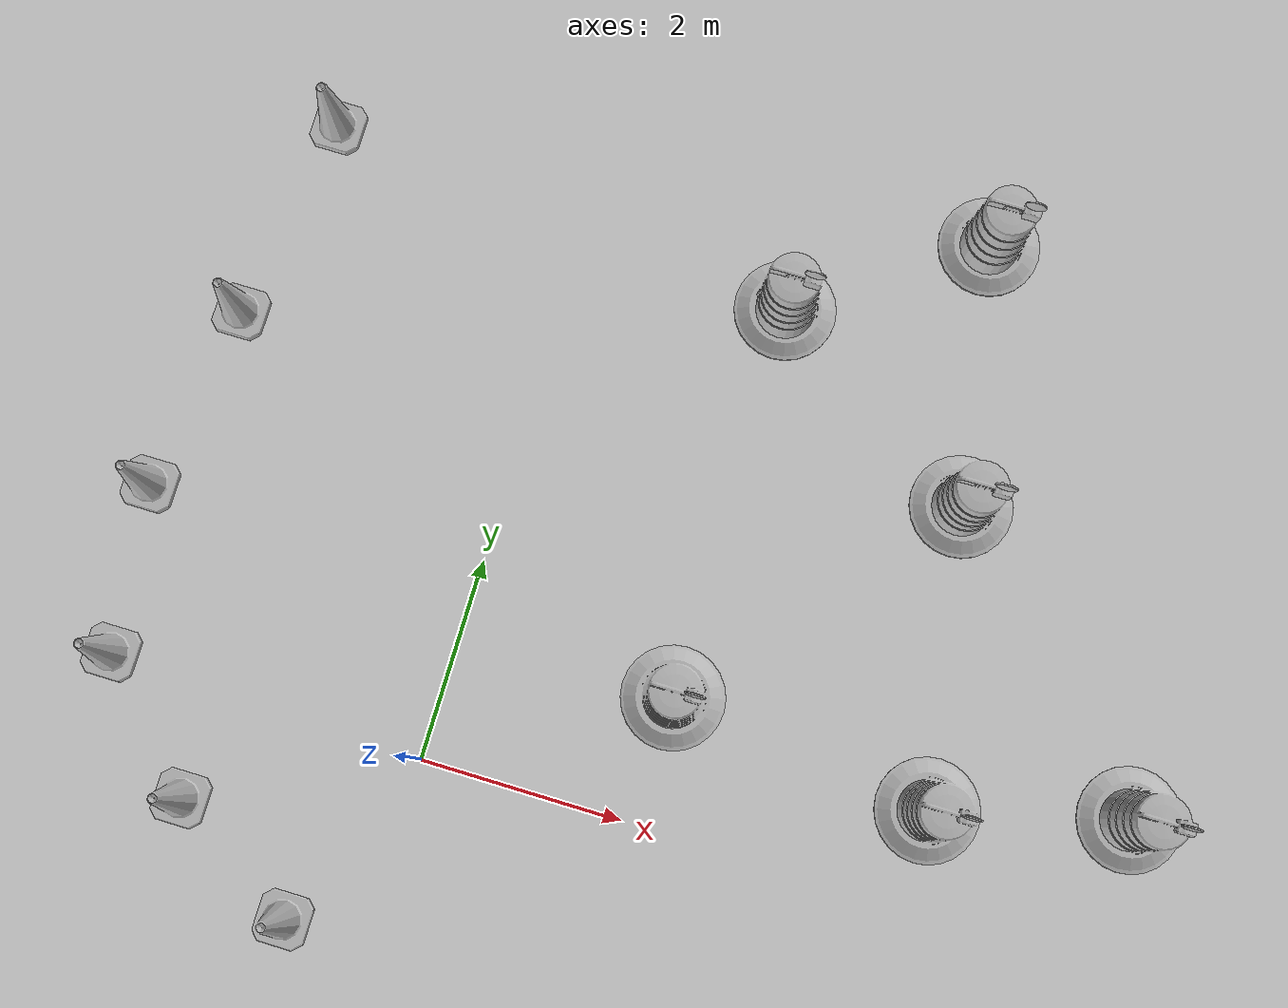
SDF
<sdf version="1.7">
 <world name="default">
  <light name="sun" type="directional">
   <pose>0 0 10 0 -0 0</pose>
   <diffuse>0.8 0.8 0.8 1</diffuse>
   <specular>0.2 0.2 0.2 1</specular>
   <attenuation>
    <range>1000</range>
    <constant>0.9</constant>
    <linear>0.01</linear>
    <quadratic>0.001</quadratic>
   </attenuation>
   <direction>-0.5 0.1 -0.9</direction>
   <spot><inner_angle>0</inner_angle><outer_angle>0</outer_angle><falloff>0</falloff></spot>
  </light>
  <model name="ground_plane">
   <static>1</static>
   <link name="link">
    <collision name="collision">
     <geometry><plane><normal>0 0 1</normal><size>100 100</size></plane></geometry>
     <surface>
      <contact><collide_bitmask>65535</collide_bitmask></contact>
      <friction><ode><mu>100</mu><mu2>50</mu2></ode></friction>
     </surface>
    </collision>
    <visual name="visual">
     <cast_shadows>0</cast_shadows>
     <geometry><plane><normal>0 0 1</normal><size>100 100</size></plane></geometry>
     <material>
      <script><uri>file://media/materials/scripts/gazebo.material</uri><name>Gazebo/Grey</name></script>
     </material>
    </visual>
   </link>
  </model>
  <gravity>0 0 -9.8</gravity>
  <magnetic_field>6e-06 2.3e-05 -4.2e-05</magnetic_field>
  <atmosphere type="adiabatic"/>
  <physics type="ode">
   <max_step_size>0.001</max_step_size>
   <real_time_factor>1</real_time_factor>
   <real_time_update_rate>1000</real_time_update_rate>
  </physics>
  <scene><ambient>0.4 0.4 0.4 1</ambient><background>0.7 0.7 0.7 1</background><shadows>1</shadows></scene>
  <audio><device>default</device></audio>
  <spherical_coordinates>
   <surface_model>EARTH_WGS84</surface_model>
   <latitude_deg>0</latitude_deg>
   <longitude_deg>0</longitude_deg>
   <elevation>0</elevation>
   <heading_deg>0</heading_deg>
  </spherical_coordinates>
  <model name="Construction Barrel">
   <link name="link">
    <inertial>
     <pose>0 0 0.4 0 -0 0</pose>
     <mass>500</mass>
     <inertia><ixx>51.2096</ixx><iyy>51.2096</iyy><izz>25</izz><ixy>0</ixy><ixz>0</ixz><iyz>0</iyz></inertia>
    </inertial>
    <collision name="collision">
     <geometry><mesh><uri>model://construction_barrel/meshes/construction_barrel.dae</uri></mesh></geometry>
    </collision>
    <visual name="visual">
     <geometry><mesh><uri>model://construction_barrel/meshes/construction_barrel.dae</uri></mesh></geometry>
    </visual>
   </link>
   <pose>2.13902 1.26173 -1e-06 2e-06 -1e-06 -2.6e-05</pose>
  </model>
  <model name="Construction Barrel_0">
   <link name="link">
    <inertial>
     <pose>0 0 0.4 0 -0 0</pose>
     <mass>500</mass>
     <inertia><ixx>51.2096</ixx><iyy>51.2096</iyy><izz>25</izz><ixy>0</ixy><ixz>0</ixz><iyz>0</iyz></inertia>
    </inertial>
    <collision name="collision">
     <geometry><mesh><uri>model://construction_barrel/meshes/construction_barrel.dae</uri></mesh></geometry>
    </collision>
    <visual name="visual">
     <geometry><mesh><uri>model://construction_barrel/meshes/construction_barrel.dae</uri></mesh></geometry>
    </visual>
   </link>
   <pose>4.3034 3.85717 -1e-06 2e-06 -1e-06 -1.8e-05</pose>
  </model>
  <model name="Construction Cone">
   <link name="link">
    <collision name="collision">
     <geometry>
      <mesh><scale>10 10 10</scale><uri>model://construction_cone/meshes/construction_cone.dae</uri></mesh>
     </geometry>
    </collision>
    <visual name="visual">
     <geometry>
      <mesh><scale>10 10 10</scale><uri>model://construction_cone/meshes/construction_cone.dae</uri></mesh>
     </geometry>
    </visual>
    <inertial>
     <inertia><ixx>1</ixx><ixy>0</ixy><ixz>0</ixz><iyy>1</iyy><iyz>0</iyz><izz>1</izz></inertia>
     <mass>1</mass>
    </inertial>
   </link>
   <pose>-3.05199 3.67938 0 -0 -0 -0</pose>
  </model>
  <model name="Construction Cone_0">
   <link name="link">
    <collision name="collision">
     <geometry>
      <mesh><scale>10 10 10</scale><uri>model://construction_cone/meshes/construction_cone.dae</uri></mesh>
     </geometry>
    </collision>
    <visual name="visual">
     <geometry>
      <mesh><scale>10 10 10</scale><uri>model://construction_cone/meshes/construction_cone.dae</uri></mesh>
     </geometry>
    </visual>
    <inertial>
     <inertia><ixx>1</ixx><ixy>0</ixy><ixz>0</ixz><iyy>1</iyy><iyz>0</iyz><izz>1</izz></inertia>
     <mass>1</mass>
    </inertial>
   </link>
   <pose>-3.16901 0.116146 -1e-06 2e-06 2e-06 0</pose>
  </model>
  <model name="Construction Barrel_1">
   <link name="link">
    <inertial>
     <pose>0 0 0.4 0 -0 0</pose>
     <mass>500</mass>
     <inertia><ixx>51.2096</ixx><iyy>51.2096</iyy><izz>25</izz><ixy>0</ixy><ixz>0</ixz><iyz>0</iyz></inertia>
    </inertial>
    <collision name="collision">
     <geometry><mesh><uri>model://construction_barrel/meshes/construction_barrel.dae</uri></mesh></geometry>
    </collision>
    <visual name="visual">
     <geometry><mesh><uri>model://construction_barrel/meshes/construction_barrel.dae</uri></mesh></geometry>
    </visual>
   </link>
   <pose>2.1097 5.25775 0 0 0 -1e-05</pose>
  </model>
  <model name="Construction Barrel_2">
   <link name="link">
    <inertial>
     <pose>0 0 0.4 0 -0 0</pose>
     <mass>500</mass>
     <inertia><ixx>51.2096</ixx><iyy>51.2096</iyy><izz>25</izz><ixy>0</ixy><ixz>0</ixz><iyz>0</iyz></inertia>
    </inertial>
    <collision name="collision">
     <geometry><mesh><uri>model://construction_barrel/meshes/construction_barrel.dae</uri></mesh></geometry>
    </collision>
    <visual name="visual">
     <geometry><mesh><uri>model://construction_barrel/meshes/construction_barrel.dae</uri></mesh></geometry>
    </visual>
   </link>
   <pose>4.76281 0.935626 -1e-06 -1e-06 4e-06 -1.8e-05</pose>
  </model>
  <model name="Construction Cone_1">
   <link name="link">
    <collision name="collision">
     <geometry>
      <mesh><scale>10 10 10</scale><uri>model://construction_cone/meshes/construction_cone.dae</uri></mesh>
     </geometry>
    </collision>
    <visual name="visual">
     <geometry>
      <mesh><scale>10 10 10</scale><uri>model://construction_cone/meshes/construction_cone.dae</uri></mesh>
     </geometry>
    </visual>
    <inertial>
     <inertia><ixx>1</ixx><ixy>0</ixy><ixz>0</ixz><iyy>1</iyy><iyz>0</iyz><izz>1</izz></inertia>
     <mass>1</mass>
    </inertial>
   </link>
   <pose>-2.72822 5.78288 -0 0 -0 0</pose>
  </model>
  <model name="Construction Cone_2">
   <link name="link">
    <collision name="collision">
     <geometry>
      <mesh><scale>10 10 10</scale><uri>model://construction_cone/meshes/construction_cone.dae</uri></mesh>
     </geometry>
    </collision>
    <visual name="visual">
     <geometry>
      <mesh><scale>10 10 10</scale><uri>model://construction_cone/meshes/construction_cone.dae</uri></mesh>
     </geometry>
    </visual>
    <inertial>
     <inertia><ixx>1</ixx><ixy>0</ixy><ixz>0</ixz><iyy>1</iyy><iyz>0</iyz><izz>1</izz></inertia>
     <mass>1</mass>
    </inertial>
   </link>
   <pose>-3.35067 1.77864 -0 0 -0 0</pose>
  </model>
  <model name="Construction Cone_3">
   <link name="link">
    <collision name="collision">
     <geometry>
      <mesh><scale>10 10 10</scale><uri>model://construction_cone/meshes/construction_cone.dae</uri></mesh>
     </geometry>
    </collision>
    <visual name="visual">
     <geometry>
      <mesh><scale>10 10 10</scale><uri>model://construction_cone/meshes/construction_cone.dae</uri></mesh>
     </geometry>
    </visual>
    <inertial>
     <inertia><ixx>1</ixx><ixy>0</ixy><ixz>0</ixz><iyy>1</iyy><iyz>0</iyz><izz>1</izz></inertia>
     <mass>1</mass>
    </inertial>
   </link>
   <pose>-2.07349 -1.00407 -0 0 -0 0</pose>
  </model>
  <model name="Construction Cone_4">
   <link name="link">
    <collision name="collision">
     <geometry>
      <mesh><scale>10 10 10</scale><uri>model://construction_cone/meshes/construction_cone.dae</uri></mesh>
     </geometry>
    </collision>
    <visual name="visual">
     <geometry>
      <mesh><scale>10 10 10</scale><uri>model://construction_cone/meshes/construction_cone.dae</uri></mesh>
     </geometry>
    </visual>
    <inertial>
     <inertia><ixx>1</ixx><ixy>0</ixy><ixz>0</ixz><iyy>1</iyy><iyz>0</iyz><izz>1</izz></inertia>
     <mass>1</mass>
    </inertial>
   </link>
   <pose>-0.78496 -1.79526 -0 0 -0 0</pose>
  </model>
  <model name="Construction Barrel_3">
   <link name="link">
    <inertial>
     <pose>0 0 0.4 0 -0 0</pose>
     <mass>500</mass>
     <inertia><ixx>51.2096</ixx><iyy>51.2096</iyy><izz>25</izz><ixy>0</ixy><ixz>0</ixz><iyz>0</iyz></inertia>
    </inertial>
    <collision name="collision">
     <geometry><mesh><uri>model://construction_barrel/meshes/construction_barrel.dae</uri></mesh></geometry>
    </collision>
    <visual name="visual">
     <geometry><mesh><uri>model://construction_barrel/meshes/construction_barrel.dae</uri></mesh></geometry>
    </visual>
   </link>
   <pose>6.62873 1.40609 -0 0 0 -7e-06</pose>
  </model>
  <model name="Construction Barrel_4">
   <link name="link">
    <inertial>
     <pose>0 0 0.4 0 -0 0</pose>
     <mass>500</mass>
     <inertia><ixx>51.2096</ixx><iyy>51.2096</iyy><izz>25</izz><ixy>0</ixy><ixz>0</ixz><iyz>0</iyz></inertia>
    </inertial>
    <collision name="collision">
     <geometry><mesh><uri>model://construction_barrel/meshes/construction_barrel.dae</uri></mesh></geometry>
    </collision>
    <visual name="visual">
     <geometry><mesh><uri>model://construction_barrel/meshes/construction_barrel.dae</uri></mesh></geometry>
    </visual>
   </link>
   <pose>3.87881 6.4733 -2e-06 4e-06 7e-06 -4e-06</pose>
  </model>
 </world>
</sdf>
